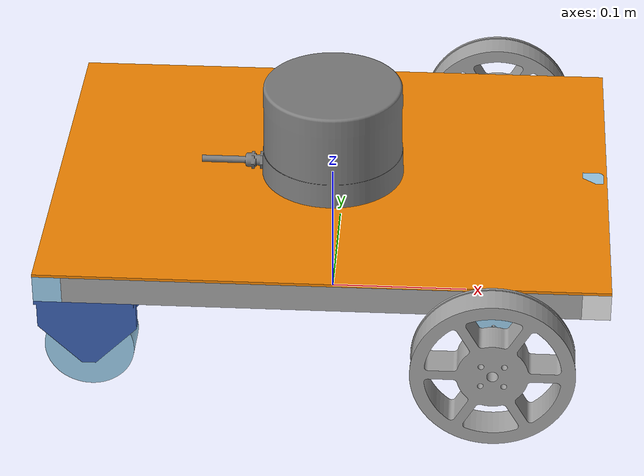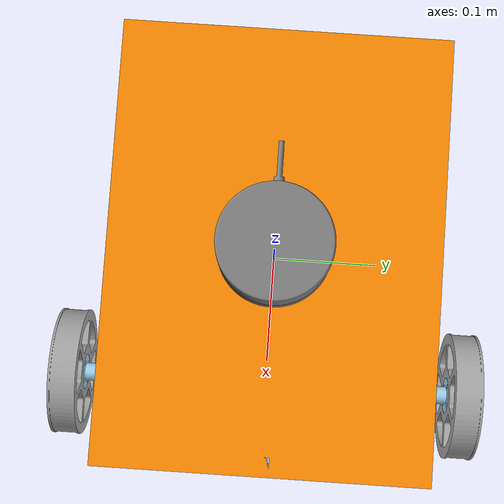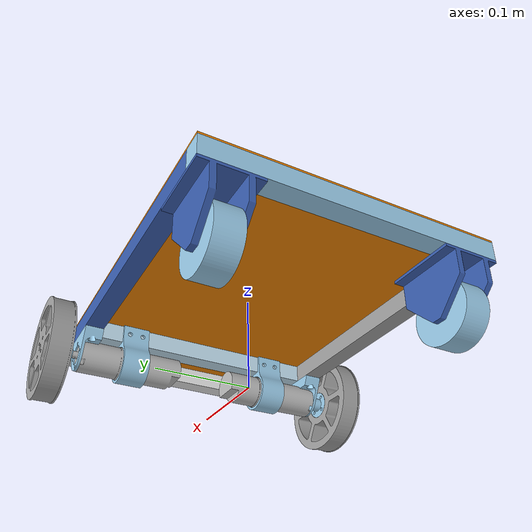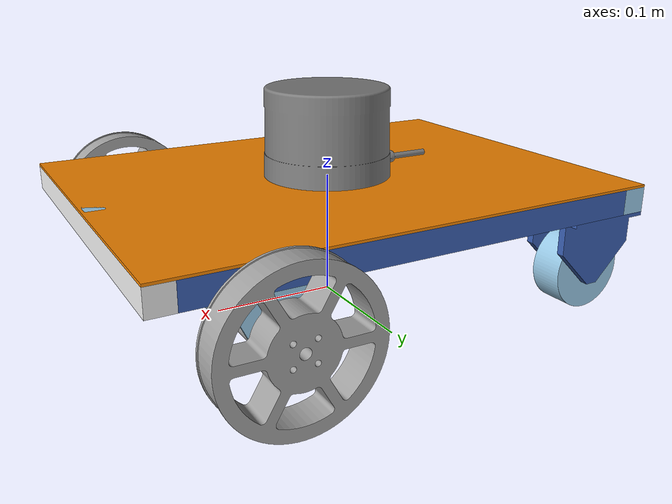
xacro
<?xml version="1.0" ?>
<!-- Generated using onshape-to-robot -->
<!-- Onshape https://cad.onshape.com/documents/4209ac7f0152411e9d4dcbf0/w/3377871fe4109e8e8f25bc5b/e/d6705610344c69e12c64875a -->
<robot name="mini_agv" xmlns:xacro="http://www.ros.org/wiki/xacro">

    <xacro:include filename="xacro_properties/xacro_properties.xacro"/>
    <xacro:include filename="modules/base_and_wheels.xacro"/>
    <xacro:include filename="modules/imu.xacro"/>
    <xacro:include filename="modules/lidar.xacro"/>
    <xacro:include filename="gazebo/gazebo_plugins.xacro"/>
    <xacro:include filename="gazebo/gazebo_properties.xacro"/>

</robot>

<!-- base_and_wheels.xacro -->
<!-- Generated using onshape-to-robot -->
<!-- Onshape https://cad.onshape.com/documents/4209ac7f0152411e9d4dcbf0/w/3377871fe4109e8e8f25bc5b/e/d6705610344c69e12c64875a -->
<robot xmlns:xacro="http://www.ros.org/wiki/xacro">

<!-- MANUAL INPUT -->

<link name="base_footprint"/>
<joint name="base_joint" type="fixed">
    <parent link="base_footprint"/>
    <child link="base_link"/>
    <origin xyz="0.0 0.0 0.0" rpy="0.0 0.0 0.0"/>
</joint>

<!-- FROM ONSHAPE2ROBOT -->

 <!-- Link base_link -->
  <link name="base_link">
    <inertial>
      <origin xyz="0.0163694 0 0.0908814" rpy="0 0 0"/>
      <mass value="2.05848"/>
      <inertia ixx="0.0244416" ixy="0" ixz="6.33966e-05" iyy="0.0401005" iyz="0" izz="0.0643575"/>
    </inertial>
    <!-- Part part_5 -->
    <visual>
      <origin xyz="0 0 0.079" rpy="-0 0 1.5708"/>
      <geometry>
        <mesh filename="package://mini_agv_description/assets/part_5.stl"/>
      </geometry>
      <material name="part_5_material">
        <color rgba="0.768627 0.886275 0.952941 1"/>
      </material>
    </visual>
    <collision>
      <origin xyz="0 0 0.079" rpy="-0 0 1.5708"/>
      <geometry>
        <mesh filename="package://mini_agv_description/assets/part_5.stl"/>
      </geometry>
    </collision>
    <!-- Part part_6 -->
    <visual>
      <origin xyz="0 0 0.079" rpy="-0 0 1.5708"/>
      <geometry>
        <mesh filename="package://mini_agv_description/assets/part_6.stl"/>
      </geometry>
      <material name="part_6_material">
        <color rgba="0.972549 0.529412 0.00392157 1"/>
      </material>
    </visual>
    <collision>
      <origin xyz="0 0 0.079" rpy="-0 0 1.5708"/>
      <geometry>
        <mesh filename="package://mini_agv_description/assets/part_6.stl"/>
      </geometry>
    </collision>
    <!-- Part part_3 -->
    <visual>
      <origin xyz="0 0 0.079" rpy="-0 0 1.5708"/>
      <geometry>
        <mesh filename="package://mini_agv_description/assets/part_3.stl"/>
      </geometry>
      <material name="part_3_material">
        <color rgba="0.231373 0.380392 0.705882 1"/>
      </material>
    </visual>
    <collision>
      <origin xyz="0 0 0.079" rpy="-0 0 1.5708"/>
      <geometry>
        <mesh filename="package://mini_agv_description/assets/part_3.stl"/>
      </geometry>
    </collision>
    <!-- Part part_4 -->
    <visual>
      <origin xyz="0 0 0.079" rpy="-0 0 1.5708"/>
      <geometry>
        <mesh filename="package://mini_agv_description/assets/part_4.stl"/>
      </geometry>
      <material name="part_4_material">
        <color rgba="0.917647 0.917647 0.917647 1"/>
      </material>
    </visual>
    <collision>
      <origin xyz="0 0 0.079" rpy="-0 0 1.5708"/>
      <geometry>
        <mesh filename="package://mini_agv_description/assets/part_4.stl"/>
      </geometry>
    </collision>
    <!-- Part part_2 -->
    <visual>
      <origin xyz="0 0 0.079" rpy="-0 0 1.5708"/>
      <geometry>
        <mesh filename="package://mini_agv_description/assets/part_2.stl"/>
      </geometry>
      <material name="part_2_material">
        <color rgba="0.647059 0.647059 0.647059 1"/>
      </material>
    </visual>
    <collision>
      <origin xyz="0 0 0.079" rpy="-0 0 1.5708"/>
      <geometry>
        <mesh filename="package://mini_agv_description/assets/part_2.stl"/>
      </geometry>
    </collision>
    <!-- Part part_1 -->
    <visual>
      <origin xyz="0 0 0.079" rpy="-0 0 1.5708"/>
      <geometry>
        <mesh filename="package://mini_agv_description/assets/part_1.stl"/>
      </geometry>
      <material name="part_1_material">
        <color rgba="0.615686 0.811765 0.929412 1"/>
      </material>
    </visual>
    <collision>
      <origin xyz="0 0 0.079" rpy="-0 0 1.5708"/>
      <geometry>
        <mesh filename="package://mini_agv_description/assets/part_1.stl"/>
      </geometry>
    </collision>
  </link>
  <!-- Link pg36_assy -->
  <link name="pg36_assy_link">
    <inertial>
      <origin xyz="-1.21e-10 0.0513289 -0.0214366" rpy="0 0 0"/>
      <mass value="0.313209"/>
      <inertia ixx="0.000352725" ixy="-2e-12" ixz="-0" iyy="6.98889e-05" iyz="8.02005e-06" izz="0.000348643"/>
    </inertial>
    <!-- Part pg36_body -->
    <visual>
      <origin xyz="0 -0.007 -0.023" rpy="1.5708 -1.5708 0"/>
      <geometry>
        <mesh filename="package://mini_agv_description/assets/pg36_body.stl"/>
      </geometry>
      <material name="pg36_body_material">
        <color rgba="0.74902 0.74902 0.74902 1"/>
      </material>
    </visual>
    <collision>
      <origin xyz="0 -0.007 -0.023" rpy="1.5708 -1.5708 0"/>
      <geometry>
        <mesh filename="package://mini_agv_description/assets/pg36_body.stl"/>
      </geometry>
    </collision>
    <!-- Part bracket_body -->
    <visual>
      <origin xyz="-0 -0.0072 -0.023" rpy="-1.5708 0 -0"/>
      <geometry>
        <mesh filename="package://mini_agv_description/assets/bracket_body.stl"/>
      </geometry>
      <material name="bracket_body_material">
        <color rgba="0.615686 0.811765 0.929412 1"/>
      </material>
    </visual>
    <collision>
      <origin xyz="-0 -0.0072 -0.023" rpy="-1.5708 0 -0"/>
      <geometry>
        <mesh filename="package://mini_agv_description/assets/bracket_body.stl"/>
      </geometry>
    </collision>
    <!-- Part bracket_shaft -->
    <visual>
      <origin xyz="0 -0.01 -0.023" rpy="-1.5708 -0 0"/>
      <geometry>
        <mesh filename="package://mini_agv_description/assets/bracket_shaft.stl"/>
      </geometry>
      <material name="bracket_shaft_material">
        <color rgba="0.615686 0.811765 0.929412 1"/>
      </material>
    </visual>
    <collision>
      <origin xyz="0 -0.01 -0.023" rpy="-1.5708 -0 0"/>
      <geometry>
        <mesh filename="package://mini_agv_description/assets/bracket_shaft.stl"/>
      </geometry>
    </collision>
    <!-- Part pg36_shaft -->
    <visual>
      <origin xyz="0 -0.007 -0.023" rpy="1.5708 -1.5708 0"/>
      <geometry>
        <mesh filename="package://mini_agv_description/assets/pg36_shaft.stl"/>
      </geometry>
      <material name="pg36_shaft_material">
        <color rgba="0.74902 0.74902 0.74902 1"/>
      </material>
    </visual>
    <collision>
      <origin xyz="0 -0.007 -0.023" rpy="1.5708 -1.5708 0"/>
      <geometry>
        <mesh filename="package://mini_agv_description/assets/pg36_shaft.stl"/>
      </geometry>
    </collision>
  </link>
  <!-- Link wheel_hub_assy -->
  <link name="wheel_hub_assy_link">
    <inertial>
      <origin xyz="0 0 0.00843384" rpy="0 0 0"/>
      <mass value="0.177204"/>
      <inertia ixx="0.000154537" ixy="-0" ixz="-0" iyy="0.000154537" iyz="-0" izz="0.000289564"/>
    </inertial>
    <!-- Part wheel -->
    <visual>
      <origin xyz="-0 0 0" rpy="1.5708 -0 -0"/>
      <geometry>
        <mesh filename="package://mini_agv_description/assets/wheel.stl"/>
      </geometry>
      <material name="wheel_material">
        <color rgba="0.647059 0.647059 0.647059 1"/>
      </material>
    </visual>
    <collision>
      <origin xyz="-0 0 0" rpy="1.5708 -0 -0"/>
      <geometry>
        <mesh filename="package://mini_agv_description/assets/wheel.stl"/>
      </geometry>
    </collision>
    <!-- Part 8mm_flange_hub -->
    <visual>
      <origin xyz="-0 0 0" rpy="1.5708 -0 -0"/>
      <geometry>
        <mesh filename="package://mini_agv_description/assets/8mm_flange_hub.stl"/>
      </geometry>
      <material name="8mm_flange_hub_material">
        <color rgba="0.615686 0.811765 0.929412 1"/>
      </material>
    </visual>
    <collision>
      <origin xyz="-0 0 0" rpy="1.5708 -0 -0"/>
      <geometry>
        <mesh filename="package://mini_agv_description/assets/8mm_flange_hub.stl"/>
      </geometry>
    </collision>
  </link>
  <!-- Joint from pg36_assy to wheel_hub_assy -->
  <joint name="wheel_left_joint" type="continuous">
    <origin xyz="0 -0.0283 -0.023" rpy="-1.5708 1.55965 -3.14159"/>
    <parent link="pg36_assy_link"/>
    <child link="wheel_hub_assy_link"/>
    <axis xyz="0 0 1"/>  <!-- reverse the direction -->
    <limit effort="10" velocity="10"/>
  </joint>
  <!-- Joint from base_link to pg36_assy -->
  <joint name="motor_left_joint" type="fixed">
    <origin xyz="0.12 0.14 0.079" rpy="-0 0 -3.14159"/>
    <parent link="base_link"/>
    <child link="pg36_assy_link"/>
    <axis xyz="0 0 1"/>
    <limit effort="10" velocity="10"/>
  </joint>
  <!-- Link pg36_assy_2 -->
  <link name="pg36_assy_2_link">
    <inertial>
      <origin xyz="-1.21e-10 0.0513289 -0.0214366" rpy="0 0 0"/>
      <mass value="0.313209"/>
      <inertia ixx="0.000352725" ixy="-2e-12" ixz="-0" iyy="6.98889e-05" iyz="8.02005e-06" izz="0.000348643"/>
    </inertial>
    <!-- Part pg36_body_2 -->
    <visual>
      <origin xyz="-0 -0.007 -0.023" rpy="1.5708 -1.5708 0"/>
      <geometry>
        <mesh filename="package://mini_agv_description/assets/pg36_body.stl"/>
      </geometry>
      <material name="pg36_body_2_material">
        <color rgba="0.74902 0.74902 0.74902 1"/>
      </material>
    </visual>
    <collision>
      <origin xyz="-0 -0.007 -0.023" rpy="1.5708 -1.5708 0"/>
      <geometry>
        <mesh filename="package://mini_agv_description/assets/pg36_body.stl"/>
      </geometry>
    </collision>
    <!-- Part bracket_body_2 -->
    <visual>
      <origin xyz="-0 -0.0072 -0.023" rpy="-1.5708 0 0"/>
      <geometry>
        <mesh filename="package://mini_agv_description/assets/bracket_body.stl"/>
      </geometry>
      <material name="bracket_body_2_material">
        <color rgba="0.615686 0.811765 0.929412 1"/>
      </material>
    </visual>
    <collision>
      <origin xyz="-0 -0.0072 -0.023" rpy="-1.5708 0 0"/>
      <geometry>
        <mesh filename="package://mini_agv_description/assets/bracket_body.stl"/>
      </geometry>
    </collision>
    <!-- Part bracket_shaft_2 -->
    <visual>
      <origin xyz="-0 -0.01 -0.023" rpy="-1.5708 -0 -0"/>
      <geometry>
        <mesh filename="package://mini_agv_description/assets/bracket_shaft.stl"/>
      </geometry>
      <material name="bracket_shaft_2_material">
        <color rgba="0.615686 0.811765 0.929412 1"/>
      </material>
    </visual>
    <collision>
      <origin xyz="-0 -0.01 -0.023" rpy="-1.5708 -0 -0"/>
      <geometry>
        <mesh filename="package://mini_agv_description/assets/bracket_shaft.stl"/>
      </geometry>
    </collision>
    <!-- Part pg36_shaft_2 -->
    <visual>
      <origin xyz="-0 -0.007 -0.023" rpy="1.5708 -1.5708 0"/>
      <geometry>
        <mesh filename="package://mini_agv_description/assets/pg36_shaft.stl"/>
      </geometry>
      <material name="pg36_shaft_2_material">
        <color rgba="0.74902 0.74902 0.74902 1"/>
      </material>
    </visual>
    <collision>
      <origin xyz="-0 -0.007 -0.023" rpy="1.5708 -1.5708 0"/>
      <geometry>
        <mesh filename="package://mini_agv_description/assets/pg36_shaft.stl"/>
      </geometry>
    </collision>
  </link>
  <!-- Link wheel_hub_assy_2 -->
  <link name="wheel_hub_assy_2_link">
    <inertial>
      <origin xyz="0 0 0.00843384" rpy="0 0 0"/>
      <mass value="0.177204"/>
      <inertia ixx="0.000154537" ixy="0" ixz="0" iyy="0.000154537" iyz="-0" izz="0.000289564"/>
    </inertial>
    <!-- Part wheel_2 -->
    <visual>
      <origin xyz="0 0 -0" rpy="1.5708 -0 0"/>
      <geometry>
        <mesh filename="package://mini_agv_description/assets/wheel.stl"/>
      </geometry>
      <material name="wheel_2_material">
        <color rgba="0.647059 0.647059 0.647059 1"/>
      </material>
    </visual>
    <collision>
      <origin xyz="0 0 -0" rpy="1.5708 -0 0"/>
      <geometry>
        <mesh filename="package://mini_agv_description/assets/wheel.stl"/>
      </geometry>
    </collision>
    <!-- Part 8mm_flange_hub_2 -->
    <visual>
      <origin xyz="0 -0 -0" rpy="1.5708 -0 -0"/>
      <geometry>
        <mesh filename="package://mini_agv_description/assets/8mm_flange_hub.stl"/>
      </geometry>
      <material name="8mm_flange_hub_2_material">
        <color rgba="0.615686 0.811765 0.929412 1"/>
      </material>
    </visual>
    <collision>
      <origin xyz="0 -0 -0" rpy="1.5708 -0 -0"/>
      <geometry>
        <mesh filename="package://mini_agv_description/assets/8mm_flange_hub.stl"/>
      </geometry>
    </collision>
  </link>
  <!-- Joint from pg36_assy_2 to wheel_hub_assy_2 -->
  <joint name="wheel_right_joint" type="continuous">
    <origin xyz="-0 -0.0283 -0.023" rpy="1.5708 1.5708 0"/>
    <parent link="pg36_assy_2_link"/>
    <child link="wheel_hub_assy_2_link"/>
    <axis xyz="0 0 -1"/>
    <limit effort="10" velocity="10"/>
  </joint>
  <!-- Joint from base_link to pg36_assy_2 -->
  <joint name="motor_right_joint" type="fixed">
    <origin xyz="0.12 -0.14 0.079" rpy="-0 -0 0"/>
    <parent link="base_link"/>
    <child link="pg36_assy_2_link"/>
    <axis xyz="0 0 1"/>
    <limit effort="10" velocity="10"/>
  </joint>
  <!-- Link caster_frame -->
  <link name="caster_frame_link">
    <inertial>
      <origin xyz="0 -0 -0.0201897" rpy="0 0 0"/>
      <mass value="0.0626507"/>
      <inertia ixx="3.42636e-05" ixy="-0" ixz="0" iyy="3.81143e-05" iyz="0" izz="3.79824e-05"/>
    </inertial>
    <!-- Part caster_frame -->
    <visual>
      <origin xyz="0 0.0135 -0.04825" rpy="0 -0 -0"/>
      <geometry>
        <mesh filename="package://mini_agv_description/assets/caster_frame.stl"/>
      </geometry>
      <material name="caster_frame_material">
        <color rgba="0.231373 0.380392 0.705882 1"/>
      </material>
    </visual>
    <collision>
      <origin xyz="0 0.0135 -0.04825" rpy="0 -0 -0"/>
      <geometry>
        <mesh filename="package://mini_agv_description/assets/caster_frame.stl"/>
      </geometry>
    </collision>
  </link>
  <!-- Link caster_wheel -->
  <link name="caster_wheel_link">
    <inertial>
      <origin xyz="0 -0 -0.0135" rpy="0 0 0"/>
      <mass value="0.122328"/>
      <inertia ixx="3.90245e-05" ixy="0" ixz="0" iyy="3.90245e-05" iyz="0" izz="6.31861e-05"/>
    </inertial>
    <!-- Part caster_wheel -->
    <visual>
      <origin xyz="0 0 0" rpy="1.5708 -0 0"/>
      <geometry>
        <mesh filename="package://mini_agv_description/assets/caster_wheel.stl"/>
      </geometry>
      <material name="caster_wheel_material">
        <color rgba="0.615686 0.811765 0.929412 1"/>
      </material>
    </visual>
    <collision>
      <origin xyz="0 0 0" rpy="1.5708 -0 0"/>
      <geometry>
        <mesh filename="package://mini_agv_description/assets/caster_wheel.stl"/>
      </geometry>
    </collision>
  </link>
  <!-- Joint from caster_frame to caster_wheel -->
  <joint name="caster_wheel_left_joint" type="continuous">
    <origin xyz="0 0.0135 -0.04825" rpy="-1.5708 -1.5708 0"/>
    <parent link="caster_frame_link"/>
    <child link="caster_wheel_link"/>
    <axis xyz="0 0 1"/>
    <limit effort="10" velocity="10"/>
  </joint>
  <!-- Joint from base_link to caster_frame -->
  <joint name="caster_left_joint" type="fixed">
    <origin xyz="-0.165 0.12 0.079" rpy="0 0 -3.14159"/>
    <parent link="base_link"/>
    <child link="caster_frame_link"/>
    <axis xyz="0 0 1"/>
    <limit effort="10" velocity="10"/>
  </joint>
  <!-- Link caster_frame_2 -->
  <link name="caster_frame_2_link">
    <inertial>
      <origin xyz="-0 -0 -0.0201897" rpy="0 0 0"/>
      <mass value="0.0626507"/>
      <inertia ixx="3.42636e-05" ixy="0" ixz="0" iyy="3.81143e-05" iyz="-0" izz="3.79824e-05"/>
    </inertial>
    <!-- Part caster_frame_2 -->
    <visual>
      <origin xyz="-0 0.0135 -0.04825" rpy="-0 -0 0"/>
      <geometry>
        <mesh filename="package://mini_agv_description/assets/caster_frame.stl"/>
      </geometry>
      <material name="caster_frame_2_material">
        <color rgba="0.231373 0.380392 0.705882 1"/>
      </material>
    </visual>
    <collision>
      <origin xyz="-0 0.0135 -0.04825" rpy="-0 -0 0"/>
      <geometry>
        <mesh filename="package://mini_agv_description/assets/caster_frame.stl"/>
      </geometry>
    </collision>
  </link>
  <!-- Link caster_wheel_2 -->
  <link name="caster_wheel_2_link">
    <inertial>
      <origin xyz="-0 -0 -0.0135" rpy="0 0 0"/>
      <mass value="0.122328"/>
      <inertia ixx="3.90245e-05" ixy="0" ixz="-0" iyy="3.90245e-05" iyz="-0" izz="6.31861e-05"/>
    </inertial>
    <!-- Part caster_wheel_2 -->
    <visual>
      <origin xyz="-0 0 0" rpy="1.5708 -0 -0"/>
      <geometry>
        <mesh filename="package://mini_agv_description/assets/caster_wheel.stl"/>
      </geometry>
      <material name="caster_wheel_2_material">
        <color rgba="0.615686 0.811765 0.929412 1"/>
      </material>
    </visual>
    <collision>
      <origin xyz="-0 0 0" rpy="1.5708 -0 -0"/>
      <geometry>
        <mesh filename="package://mini_agv_description/assets/caster_wheel.stl"/>
      </geometry>
    </collision>
  </link>
  <!-- Joint from caster_frame_2 to caster_wheel_2 -->
  <joint name="caster_wheel_right_joint" type="continuous">
    <origin xyz="-0 -0.0135 -0.04825" rpy="1.5708 1.5708 0"/>
    <parent link="caster_frame_2_link"/>
    <child link="caster_wheel_2_link"/>
    <axis xyz="0 0 1"/>
    <limit effort="10" velocity="10"/>
  </joint>
  <!-- Joint from base_link to caster_frame_2 -->
  <joint name="caster_right_joint" type="fixed">
    <origin xyz="-0.165 -0.12 0.079" rpy="0 0 -3.14159"/>
    <parent link="base_link"/>
    <child link="caster_frame_2_link"/>
    <axis xyz="0 0 1"/>
    <limit effort="10" velocity="10"/>
  </joint>

</robot>

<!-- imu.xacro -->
<!-- Generated using onshape-to-robot -->
<!-- Onshape https://cad.onshape.com/documents/4209ac7f0152411e9d4dcbf0/w/3377871fe4109e8e8f25bc5b/e/d6705610344c69e12c64875a -->
<robot xmlns:xacro="http://www.ros.org/wiki/xacro">

<!-- FROM ONSHAPE2ROBOT -->

  <!-- Link imu -->
  <link name="imu_link">
    <inertial>
      <origin xyz="0 -0 -0.005" rpy="0 0 0"/>
      <mass value="0.0028125"/>
      <inertia ixx="7.6172e-08" ixy="-0" ixz="0" iyy="7.6172e-08" iyz="0" izz="1.05469e-07"/>
    </inertial>
    <!-- Part imu -->
    <visual>
      <origin xyz="0 -0 -0" rpy="-3.14159 -0 0"/>
      <geometry>
        <mesh filename="package://mini_agv_description/assets/imu.stl"/>
      </geometry>
      <material name="imu_material">
        <color rgba="0.615686 0.811765 0.929412 1"/>
      </material>
    </visual>
    <collision>
      <origin xyz="0 -0 -0" rpy="-3.14159 -0 0"/>
      <geometry>
        <mesh filename="package://mini_agv_description/assets/imu.stl"/>
      </geometry>
    </collision>
  </link>
  <!-- Joint from base_link to imu -->
  <joint name="imu_joint" type="fixed">
    <origin xyz="0.19 0 0.101" rpy="0 -0 0"/>
    <parent link="base_link"/>
    <child link="imu_link"/>
    <axis xyz="0 0 1"/>
    <limit effort="10" velocity="10"/>
  </joint>

  </robot>

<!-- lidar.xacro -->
<!--
  lidar.xacro – replaces GPU LiDAR with a depth camera
  The depth image is converted to a laser scan via depthimage_to_laserscan.
-->
<robot xmlns:xacro="http://www.ros.org/wiki/xacro">

  <!-- ============ LINK ============ -->
  <link name="velodyne_lidar_link">
    <!-- Inertial (from your URDF) -->
    <inertial>
      <origin xyz="0.000186953 -2.55566e-06 -0.0355054" rpy="0 0 0"/>
      <mass value="0.719126"/>
      <inertia ixx="0.000767719" ixy="-3.44e-10" ixz="-3.81693e-06"
               iyy="0.000777879" iyz="6.0148e-08" izz="0.000926152"/>
    </inertial>

    <!-- Visual (your STL mesh) -->
    <visual>
      <origin xyz="0 -0 0" rpy="-1.5708 -0 0"/>
      <geometry>
        <mesh filename="package://mini_agv_description/assets/velodyne_lidar.stl"/>
      </geometry>
      <material name="velodyne_lidar_material">
        <color rgba="0.490196 0.490196 0.490196 1"/>
      </material>
    </visual>

    <!-- Collision (same mesh) -->
    <collision>
      <origin xyz="0 -0 0" rpy="-1.5708 -0 0"/>
      <geometry>
        <mesh filename="package://mini_agv_description/assets/velodyne_lidar.stl"/>
      </geometry>
    </collision>

    <!-- ============ DEPTH CAMERA SENSOR (CPU) ============ -->
    <!-- This replaces the GPU LiDAR. It runs entirely on CPU. -->
    <sensor name="depth_camera" type="depth_camera">
      <always_on>true</always_on>
      <update_rate>10</update_rate>               <!-- Hz -->
      <visualize>true</visualize>                 <!-- shows RGB/depth in Gazebo -->
      <topic>/demo/depth</topic>                  <!-- base topic; Gazebo will append /image and /camera_info -->

      <camera>
        <horizontal_fov>1.0472</horizontal_fov>   <!-- ~60° field of view -->
        <image>
          <width>640</width>
          <height>480</height>
        </image>
        <clip>
          <near>0.1</near>                        <!-- min range (m) -->
          <far>10.0</far>                         <!-- max range (m) -->
        </clip>
      </camera>
    </sensor>

  </link>

  <!-- ============ JOINT ============ -->
  <!-- Fixed joint from base_link to the lidar frame -->
  <joint name="lidar_joint" type="fixed">
    <origin xyz="0 0 0.101" rpy="-3.14159 0 -3.14159"/>
    <parent link="base_link"/>
    <child link="velodyne_lidar_link"/>
    <axis xyz="0 0 1"/>
    <limit effort="10" velocity="10"/>
  </joint>

</robot>
